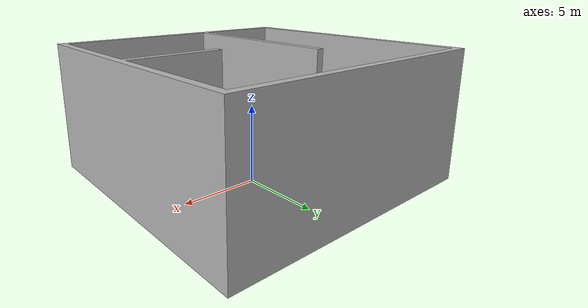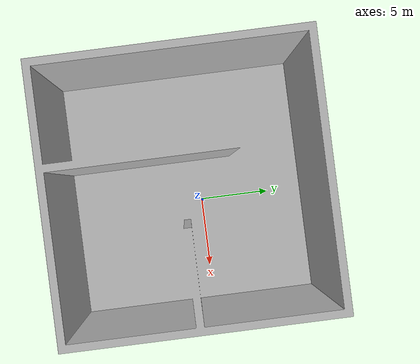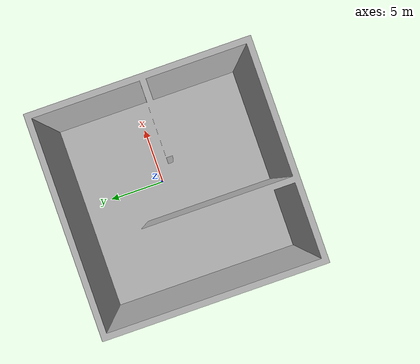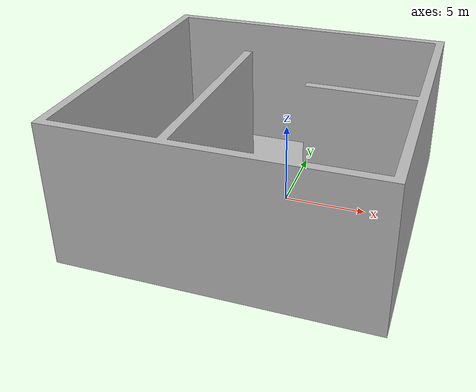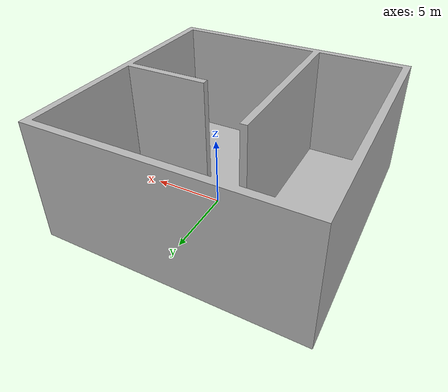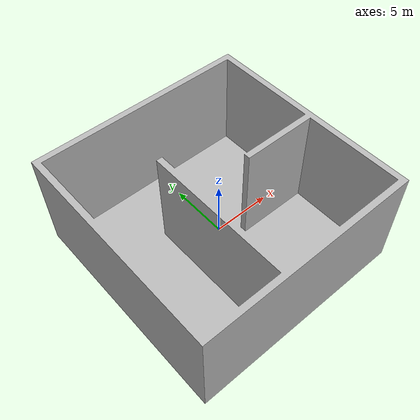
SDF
<?xml version="1.0" ?>
<sdf version="1.6">
  <world name="room">
    <physics name="1ms" type="ignored">
      <max_step_size>0.001</max_step_size>
      <real_time_factor>1.0</real_time_factor>
    </physics>
    <plugin
      filename="gz-sim-physics-system"
      name="gz::sim::systems::Physics">
    </plugin>
    <plugin
      filename="gz-sim-user-commands-system"
      name="gz::sim::systems::UserCommands">
    </plugin>
    <plugin
      filename="gz-sim-scene-broadcaster-system"
      name="gz::sim::systems::SceneBroadcaster">
    </plugin>
    <plugin
      filename="gz-sim-sensors-system"
      name="gz::sim::systems::Sensors">
      <render_engine>ogre2</render_engine>
    </plugin>
    <plugin
      filename="gz-sim-contact-system"
      name="gz::sim::systems::Contact">
    </plugin>
    <light type="directional" name="sun">
      <cast_shadows>true</cast_shadows>
      <pose>0 0 10 0 0 0</pose>
      <diffuse>0.8 0.8 0.8 1</diffuse>
      <specular>0.2 0.2 0.2 1</specular>
      <attenuation>
        <range>1000</range>
        <constant>0.9</constant>
        <linear>0.01</linear>
        <quadratic>0.001</quadratic>
      </attenuation>
      <direction>-0.5 0.1 -0.9</direction>
    </light>
    <include>
        <uri>file:///models/room</uri>
        <pose>-10 -10 0 0 0 0</pose>
    </include>
  </world>
</sdf>

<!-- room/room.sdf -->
<sdf version="1.6">
  <model name="room">
    <!-- keep it static so physics doesn’t drop it -->
    <static>true</static>

    <link name="link">
      <!-- visual -->
      <visual name="visual">
        <geometry>
          <mesh>
           <uri>file:///models/room/meshes/room2.dae</uri>

          </mesh>
        </geometry>
      </visual>
      <!-- collision (use same mesh or a simplified one) -->
      <collision name="collision">
        <geometry>
          <mesh>
            <uri>file:///models/room/meshes/room2.dae</uri>

          </mesh>
        </geometry>
      </collision>
    </link>
  </model>
</sdf>
